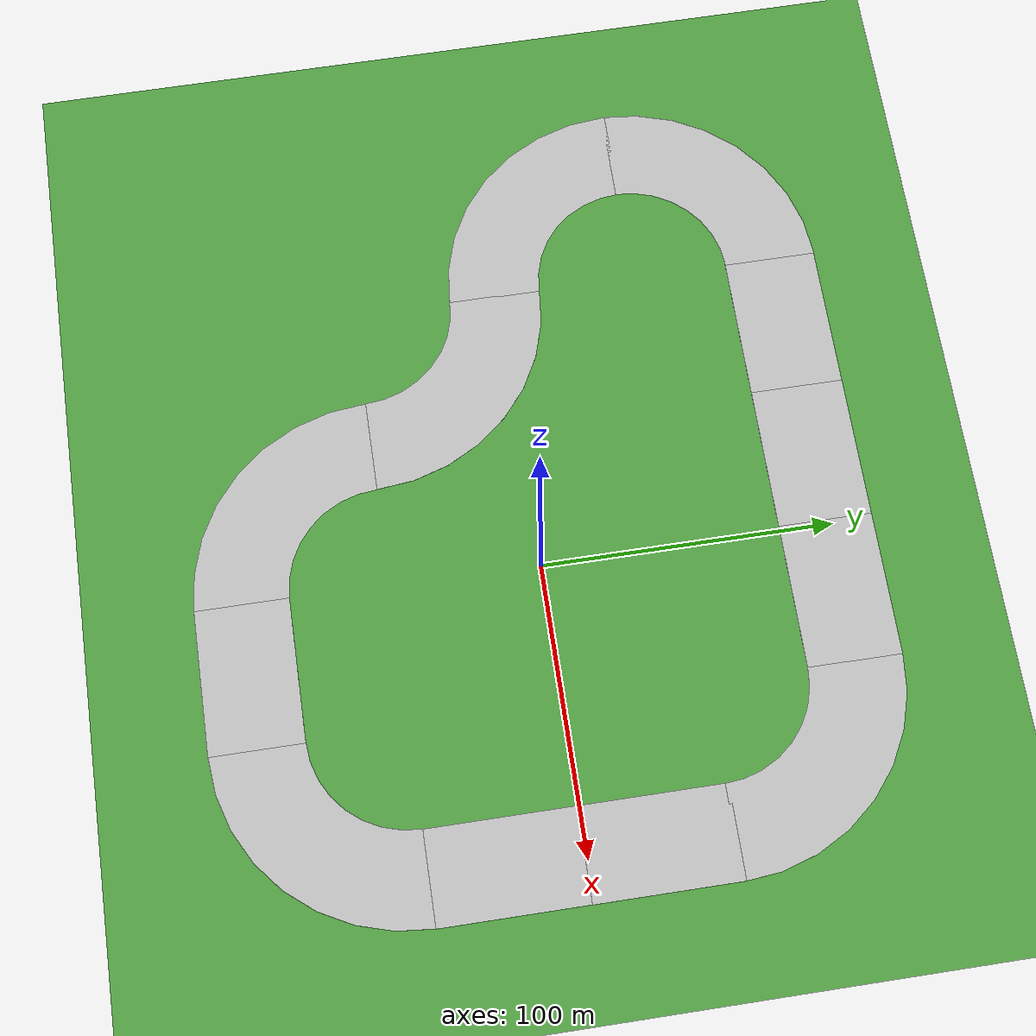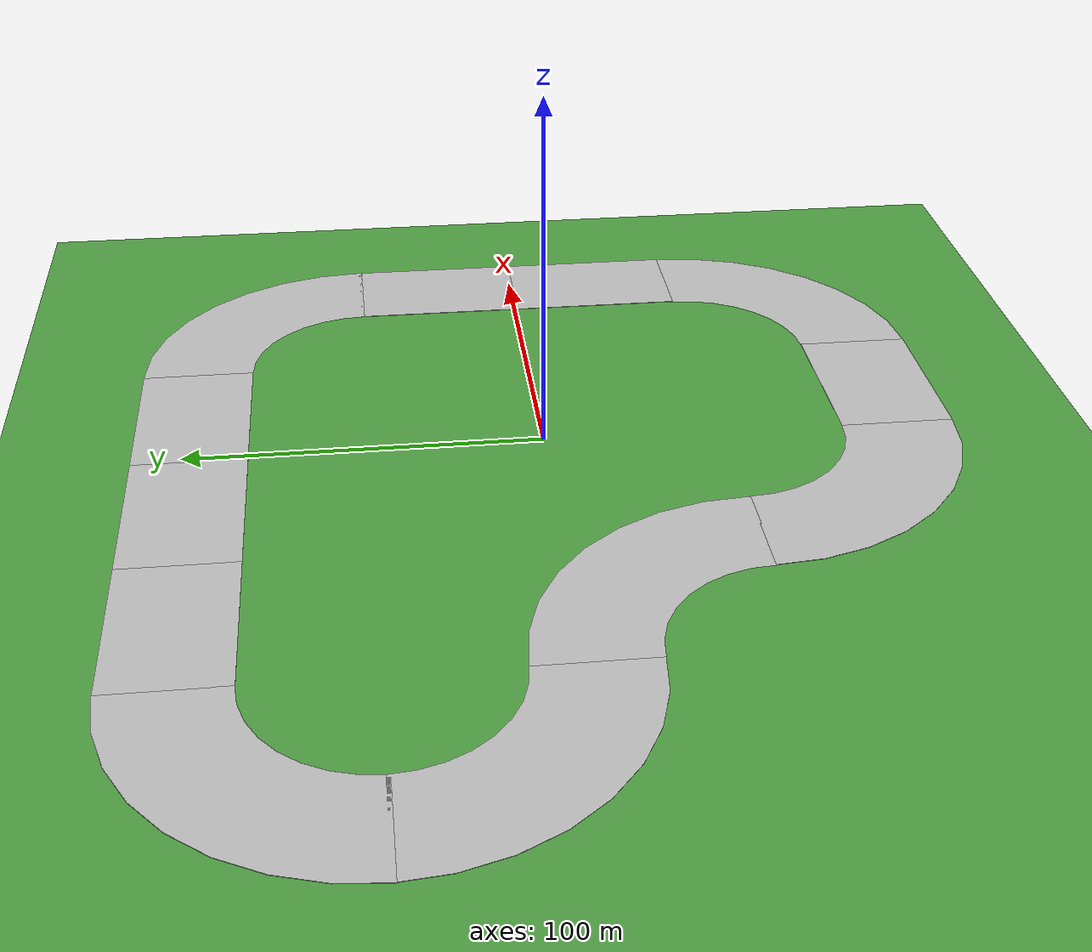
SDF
<sdf version="1.6">
 <world name="default">
  <light name="sun" type="directional">
   <pose>0 0 10 0 -0 0</pose>
   <diffuse>0.8 0.8 0.8 1</diffuse>
   <specular>0.1 0.1 0.1 1</specular>
   <attenuation>
    <range>1000</range>
    <constant>0.9</constant>
    <linear>0.01</linear>
    <quadratic>0.001</quadratic>
   </attenuation>
   <direction>-0.5 0.5 -1</direction>
  </light>
  <gravity>0 0 -9.8</gravity>
  <magnetic_field>6e-06 2.3e-05 -4.2e-05</magnetic_field>
  <atmosphere type="adiabatic"/>
  <physics name="default_physics" default="0" type="ode">
   <max_step_size>0.001</max_step_size>
   <real_time_factor>1</real_time_factor>
   <real_time_update_rate>1000</real_time_update_rate>
  </physics>
  <scene><ambient>0.4 0.4 0.4 1</ambient><background>0.7 0.7 0.7 1</background><shadows>1</shadows></scene>
  <spherical_coordinates>
   <surface_model>EARTH_WGS84</surface_model>
   <latitude_deg>0</latitude_deg>
   <longitude_deg>0</longitude_deg>
   <elevation>0</elevation>
   <heading_deg>0</heading_deg>
  </spherical_coordinates>
  <model name="grass_plane">
   <static>1</static>
   <link name="link">
    <collision name="collision">
     <geometry><plane><normal>0 0 1</normal><size>1000 1000</size></plane></geometry>
     <surface><friction><ode><mu>100</mu><mu2>50</mu2></ode></friction></surface>
    </collision>
    <visual name="visual">
     <cast_shadows>0</cast_shadows>
     <geometry><plane><normal>0 0 1</normal><size>1000 1000</size></plane></geometry>
     <material>
      <script>
       <uri>model://ds_grass_background/materials/scripts</uri>
       <uri>model://ds_grass_background/materials/textures</uri>
       <name>GrassBackground</name>
      </script>
     </material>
    </visual>
   </link>
  </model>
  <model name="curved_6lane_50m">
   <link name="link_0">
    <inertial>
     <mass>1</mass>
     <inertia>
      <ixx>0.166667</ixx>
      <ixy>0</ixy>
      <ixz>0</ixz>
      <iyy>0.166667</iyy>
      <iyz>0</iyz>
      <izz>0.166667</izz>
     </inertia>
    </inertial>
    <visual name="visual">
     <geometry><mesh><uri>model://curved_6lane_50m/curved_6lane_50m.dae</uri><scale>1 1 1</scale></mesh></geometry>
    </visual>
    <collision name="collision">
     <geometry><mesh><uri>model://curved_6lane_50m/curved_6lane_50m.dae</uri><scale>1 1 1</scale></mesh></geometry>
     <surface>
      <friction>
       <ode><mu>1</mu><mu2>1</mu2><fdir1>0 0 0</fdir1><slip1>0</slip1><slip2>0</slip2></ode>
       <torsional>
        <coefficient>1</coefficient>
        <patch_radius>0</patch_radius>
        <surface_radius>0</surface_radius>
        <use_patch_radius>1</use_patch_radius>
        <ode><slip>0</slip></ode>
       </torsional>
      </friction>
      <bounce><restitution_coefficient>0</restitution_coefficient><threshold>1e+06</threshold></bounce>
      <contact>
       <collide_without_contact>0</collide_without_contact>
       <collide_without_contact_bitmask>1</collide_without_contact_bitmask>
       <collide_bitmask>1</collide_bitmask>
       <ode>
        <soft_cfm>0</soft_cfm>
        <soft_erp>0.2</soft_erp>
        <kp>1e+13</kp>
        <kd>1</kd>
        <max_vel>0.01</max_vel>
        <min_depth>0</min_depth>
       </ode>
       <bullet>
        <split_impulse>1</split_impulse>
        <split_impulse_penetration_threshold>-0.01</split_impulse_penetration_threshold>
        <soft_cfm>0</soft_cfm>
        <soft_erp>0.2</soft_erp>
        <kp>1e+13</kp>
        <kd>1</kd>
       </bullet>
      </contact>
     </surface>
    </collision>
   </link>
   <static>1</static>
   <pose>48.1322 47.6005 0 0 -0 0</pose>
  </model>
  <model name="straight_6lane_50m_0">
   <link name="link_0">
    <inertial>
     <mass>1</mass>
     <inertia>
      <ixx>0.166667</ixx>
      <ixy>0</ixy>
      <ixz>0</ixz>
      <iyy>0.166667</iyy>
      <iyz>0</iyz>
      <izz>0.166667</izz>
     </inertia>
    </inertial>
    <visual name="visual">
     <geometry>
      <mesh><uri>model://straight_6lane_50m/straight_6lane_50m.dae</uri><scale>1 1 1</scale></mesh>
     </geometry>
    </visual>
    <collision name="collision">
     <geometry>
      <mesh><uri>model://straight_6lane_50m/straight_6lane_50m.dae</uri><scale>1 1 1</scale></mesh>
     </geometry>
     <surface>
      <friction>
       <ode><mu>1</mu><mu2>1</mu2><fdir1>0 0 0</fdir1><slip1>0</slip1><slip2>0</slip2></ode>
       <torsional>
        <coefficient>1</coefficient>
        <patch_radius>0</patch_radius>
        <surface_radius>0</surface_radius>
        <use_patch_radius>1</use_patch_radius>
        <ode><slip>0</slip></ode>
       </torsional>
      </friction>
      <bounce><restitution_coefficient>0</restitution_coefficient><threshold>1e+06</threshold></bounce>
      <contact>
       <collide_without_contact>0</collide_without_contact>
       <collide_without_contact_bitmask>1</collide_without_contact_bitmask>
       <collide_bitmask>1</collide_bitmask>
       <ode>
        <soft_cfm>0</soft_cfm>
        <soft_erp>0.2</soft_erp>
        <kp>1e+13</kp>
        <kd>1</kd>
        <max_vel>0.01</max_vel>
        <min_depth>0</min_depth>
       </ode>
       <bullet>
        <split_impulse>1</split_impulse>
        <split_impulse_penetration_threshold>-0.01</split_impulse_penetration_threshold>
        <soft_cfm>0</soft_cfm>
        <soft_erp>0.2</soft_erp>
        <kp>1e+13</kp>
        <kd>1</kd>
       </bullet>
      </contact>
     </surface>
    </collision>
   </link>
   <static>1</static>
   <pose>98.0362 23.6968 0 0 -0 0</pose>
  </model>
  <model name="straight_6lane_50m_1">
   <link name="link_0">
    <inertial>
     <mass>1</mass>
     <inertia>
      <ixx>0.166667</ixx>
      <ixy>0</ixy>
      <ixz>0</ixz>
      <iyy>0.166667</iyy>
      <iyz>0</iyz>
      <izz>0.166667</izz>
     </inertia>
    </inertial>
    <visual name="visual">
     <geometry>
      <mesh><uri>model://straight_6lane_50m/straight_6lane_50m.dae</uri><scale>1 1 1</scale></mesh>
     </geometry>
    </visual>
    <collision name="collision">
     <geometry>
      <mesh><uri>model://straight_6lane_50m/straight_6lane_50m.dae</uri><scale>1 1 1</scale></mesh>
     </geometry>
     <surface>
      <friction>
       <ode><mu>1</mu><mu2>1</mu2><fdir1>0 0 0</fdir1><slip1>0</slip1><slip2>0</slip2></ode>
       <torsional>
        <coefficient>1</coefficient>
        <patch_radius>0</patch_radius>
        <surface_radius>0</surface_radius>
        <use_patch_radius>1</use_patch_radius>
        <ode><slip>0</slip></ode>
       </torsional>
      </friction>
      <bounce><restitution_coefficient>0</restitution_coefficient><threshold>1e+06</threshold></bounce>
      <contact>
       <collide_without_contact>0</collide_without_contact>
       <collide_without_contact_bitmask>1</collide_without_contact_bitmask>
       <collide_bitmask>1</collide_bitmask>
       <ode>
        <soft_cfm>0</soft_cfm>
        <soft_erp>0.2</soft_erp>
        <kp>1e+13</kp>
        <kd>1</kd>
        <max_vel>0.01</max_vel>
        <min_depth>0</min_depth>
       </ode>
       <bullet>
        <split_impulse>1</split_impulse>
        <split_impulse_penetration_threshold>-0.01</split_impulse_penetration_threshold>
        <soft_cfm>0</soft_cfm>
        <soft_erp>0.2</soft_erp>
        <kp>1e+13</kp>
        <kd>1</kd>
       </bullet>
      </contact>
     </surface>
    </collision>
   </link>
   <static>1</static>
   <pose>23.237 97.6076 0 0 -0 1.57</pose>
  </model>
  <model name="straight_6lane_50m_1_clone">
   <link name="link_0">
    <inertial>
     <mass>1</mass>
     <inertia>
      <ixx>0.166667</ixx>
      <ixy>0</ixy>
      <ixz>0</ixz>
      <iyy>0.166667</iyy>
      <iyz>0</iyz>
      <izz>0.166667</izz>
     </inertia>
    </inertial>
    <visual name="visual">
     <geometry>
      <mesh><uri>model://straight_6lane_50m/straight_6lane_50m.dae</uri><scale>1 1 1</scale></mesh>
     </geometry>
    </visual>
    <collision name="collision">
     <geometry>
      <mesh><uri>model://straight_6lane_50m/straight_6lane_50m.dae</uri><scale>1 1 1</scale></mesh>
     </geometry>
     <surface>
      <friction>
       <ode><mu>1</mu><mu2>1</mu2><fdir1>0 0 0</fdir1><slip1>0</slip1><slip2>0</slip2></ode>
       <torsional>
        <coefficient>1</coefficient>
        <patch_radius>0</patch_radius>
        <surface_radius>0</surface_radius>
        <use_patch_radius>1</use_patch_radius>
        <ode><slip>0</slip></ode>
       </torsional>
      </friction>
      <bounce><restitution_coefficient>0</restitution_coefficient><threshold>1e+06</threshold></bounce>
      <contact>
       <collide_without_contact>0</collide_without_contact>
       <collide_without_contact_bitmask>1</collide_without_contact_bitmask>
       <collide_bitmask>1</collide_bitmask>
       <ode>
        <soft_cfm>0</soft_cfm>
        <soft_erp>0.2</soft_erp>
        <kp>1e+13</kp>
        <kd>1</kd>
        <max_vel>0.01</max_vel>
        <min_depth>0</min_depth>
       </ode>
       <bullet>
        <split_impulse>1</split_impulse>
        <split_impulse_penetration_threshold>-0.01</split_impulse_penetration_threshold>
        <soft_cfm>0</soft_cfm>
        <soft_erp>0.2</soft_erp>
        <kp>1e+13</kp>
        <kd>1</kd>
       </bullet>
      </contact>
     </surface>
    </collision>
   </link>
   <static>1</static>
   <pose>-26.5632 97.6271 0 0 -0 1.57</pose>
  </model>
  <model name="straight_6lane_50m_1_clone_0">
   <link name="link_0">
    <inertial>
     <mass>1</mass>
     <inertia>
      <ixx>0.166667</ixx>
      <ixy>0</ixy>
      <ixz>0</ixz>
      <iyy>0.166667</iyy>
      <iyz>0</iyz>
      <izz>0.166667</izz>
     </inertia>
    </inertial>
    <visual name="visual">
     <geometry>
      <mesh><uri>model://straight_6lane_50m/straight_6lane_50m.dae</uri><scale>1 1 1</scale></mesh>
     </geometry>
    </visual>
    <collision name="collision">
     <geometry>
      <mesh><uri>model://straight_6lane_50m/straight_6lane_50m.dae</uri><scale>1 1 1</scale></mesh>
     </geometry>
     <surface>
      <friction>
       <ode><mu>1</mu><mu2>1</mu2><fdir1>0 0 0</fdir1><slip1>0</slip1><slip2>0</slip2></ode>
       <torsional>
        <coefficient>1</coefficient>
        <patch_radius>0</patch_radius>
        <surface_radius>0</surface_radius>
        <use_patch_radius>1</use_patch_radius>
        <ode><slip>0</slip></ode>
       </torsional>
      </friction>
      <bounce><restitution_coefficient>0</restitution_coefficient><threshold>1e+06</threshold></bounce>
      <contact>
       <collide_without_contact>0</collide_without_contact>
       <collide_without_contact_bitmask>1</collide_without_contact_bitmask>
       <collide_bitmask>1</collide_bitmask>
       <ode>
        <soft_cfm>0</soft_cfm>
        <soft_erp>0.2</soft_erp>
        <kp>1e+13</kp>
        <kd>1</kd>
        <max_vel>0.01</max_vel>
        <min_depth>0</min_depth>
       </ode>
       <bullet>
        <split_impulse>1</split_impulse>
        <split_impulse_penetration_threshold>-0.01</split_impulse_penetration_threshold>
        <soft_cfm>0</soft_cfm>
        <soft_erp>0.2</soft_erp>
        <kp>1e+13</kp>
        <kd>1</kd>
       </bullet>
      </contact>
     </surface>
    </collision>
   </link>
   <static>1</static>
   <pose>-76.4974 97.6514 0 0 -0 1.57</pose>
  </model>
  <model name="curved_6lane_50m_clone">
   <link name="link_0">
    <inertial>
     <mass>1</mass>
     <inertia>
      <ixx>0.166667</ixx>
      <ixy>0</ixy>
      <ixz>0</ixz>
      <iyy>0.166667</iyy>
      <iyz>0</iyz>
      <izz>0.166667</izz>
     </inertia>
    </inertial>
    <visual name="visual">
     <geometry><mesh><uri>model://curved_6lane_50m/curved_6lane_50m.dae</uri><scale>1 1 1</scale></mesh></geometry>
    </visual>
    <collision name="collision">
     <geometry><mesh><uri>model://curved_6lane_50m/curved_6lane_50m.dae</uri><scale>1 1 1</scale></mesh></geometry>
     <surface>
      <friction>
       <ode><mu>1</mu><mu2>1</mu2><fdir1>0 0 0</fdir1><slip1>0</slip1><slip2>0</slip2></ode>
       <torsional>
        <coefficient>1</coefficient>
        <patch_radius>0</patch_radius>
        <surface_radius>0</surface_radius>
        <use_patch_radius>1</use_patch_radius>
        <ode><slip>0</slip></ode>
       </torsional>
      </friction>
      <bounce><restitution_coefficient>0</restitution_coefficient><threshold>1e+06</threshold></bounce>
      <contact>
       <collide_without_contact>0</collide_without_contact>
       <collide_without_contact_bitmask>1</collide_without_contact_bitmask>
       <collide_bitmask>1</collide_bitmask>
       <ode>
        <soft_cfm>0</soft_cfm>
        <soft_erp>0.2</soft_erp>
        <kp>1e+13</kp>
        <kd>1</kd>
        <max_vel>0.01</max_vel>
        <min_depth>0</min_depth>
       </ode>
       <bullet>
        <split_impulse>1</split_impulse>
        <split_impulse_penetration_threshold>-0.01</split_impulse_penetration_threshold>
        <soft_cfm>0</soft_cfm>
        <soft_erp>0.2</soft_erp>
        <kp>1e+13</kp>
        <kd>1</kd>
       </bullet>
      </contact>
     </surface>
    </collision>
   </link>
   <static>1</static>
   <pose>-101.375 47.786 0 0 -0 1.57</pose>
  </model>
  <model name="curved_6lane_50m_clone_clone">
   <link name="link_0">
    <inertial>
     <mass>1</mass>
     <inertia>
      <ixx>0.166667</ixx>
      <ixy>0</ixy>
      <ixz>0</ixz>
      <iyy>0.166667</iyy>
      <iyz>0</iyz>
      <izz>0.166667</izz>
     </inertia>
    </inertial>
    <visual name="visual">
     <geometry><mesh><uri>model://curved_6lane_50m/curved_6lane_50m.dae</uri><scale>1 1 1</scale></mesh></geometry>
    </visual>
    <collision name="collision">
     <geometry><mesh><uri>model://curved_6lane_50m/curved_6lane_50m.dae</uri><scale>1 1 1</scale></mesh></geometry>
     <surface>
      <friction>
       <ode><mu>1</mu><mu2>1</mu2><fdir1>0 0 0</fdir1><slip1>0</slip1><slip2>0</slip2></ode>
       <torsional>
        <coefficient>1</coefficient>
        <patch_radius>0</patch_radius>
        <surface_radius>0</surface_radius>
        <use_patch_radius>1</use_patch_radius>
        <ode><slip>0</slip></ode>
       </torsional>
      </friction>
      <bounce><restitution_coefficient>0</restitution_coefficient><threshold>1e+06</threshold></bounce>
      <contact>
       <collide_without_contact>0</collide_without_contact>
       <collide_without_contact_bitmask>1</collide_without_contact_bitmask>
       <collide_bitmask>1</collide_bitmask>
       <ode>
        <soft_cfm>0</soft_cfm>
        <soft_erp>0.2</soft_erp>
        <kp>1e+13</kp>
        <kd>1</kd>
        <max_vel>0.01</max_vel>
        <min_depth>0</min_depth>
       </ode>
       <bullet>
        <split_impulse>1</split_impulse>
        <split_impulse_penetration_threshold>-0.01</split_impulse_penetration_threshold>
        <soft_cfm>0</soft_cfm>
        <soft_erp>0.2</soft_erp>
        <kp>1e+13</kp>
        <kd>1</kd>
       </bullet>
      </contact>
     </surface>
    </collision>
   </link>
   <static>1</static>
   <pose>-101.293 48.8426 0 0 -0 3.14159</pose>
  </model>
  <model name="curved_6lane_50m_clone_clone_clone">
   <link name="link_0">
    <inertial>
     <mass>1</mass>
     <inertia>
      <ixx>0.166667</ixx>
      <ixy>0</ixy>
      <ixz>0</ixz>
      <iyy>0.166667</iyy>
      <iyz>0</iyz>
      <izz>0.166667</izz>
     </inertia>
    </inertial>
    <visual name="visual">
     <geometry><mesh><uri>model://curved_6lane_50m/curved_6lane_50m.dae</uri><scale>1 1 1</scale></mesh></geometry>
    </visual>
    <collision name="collision">
     <geometry><mesh><uri>model://curved_6lane_50m/curved_6lane_50m.dae</uri><scale>1 1 1</scale></mesh></geometry>
     <surface>
      <friction>
       <ode><mu>1</mu><mu2>1</mu2><fdir1>0 0 0</fdir1><slip1>0</slip1><slip2>0</slip2></ode>
       <torsional>
        <coefficient>1</coefficient>
        <patch_radius>0</patch_radius>
        <surface_radius>0</surface_radius>
        <use_patch_radius>1</use_patch_radius>
        <ode><slip>0</slip></ode>
       </torsional>
      </friction>
      <bounce><restitution_coefficient>0</restitution_coefficient><threshold>1e+06</threshold></bounce>
      <contact>
       <collide_without_contact>0</collide_without_contact>
       <collide_without_contact_bitmask>1</collide_without_contact_bitmask>
       <collide_bitmask>1</collide_bitmask>
       <ode>
        <soft_cfm>0</soft_cfm>
        <soft_erp>0.2</soft_erp>
        <kp>1e+13</kp>
        <kd>1</kd>
        <max_vel>0.01</max_vel>
        <min_depth>0</min_depth>
       </ode>
       <bullet>
        <split_impulse>1</split_impulse>
        <split_impulse_penetration_threshold>-0.01</split_impulse_penetration_threshold>
        <soft_cfm>0</soft_cfm>
        <soft_erp>0.2</soft_erp>
        <kp>1e+13</kp>
        <kd>1</kd>
       </bullet>
      </contact>
     </surface>
    </collision>
   </link>
   <static>1</static>
   <pose>-101.668 -51.1969 0 0 -0 0</pose>
  </model>
  <model name="curved_6lane_50m_clone_clone_clone_0">
   <link name="link_0">
    <inertial>
     <mass>1</mass>
     <inertia>
      <ixx>0.166667</ixx>
      <ixy>0</ixy>
      <ixz>0</ixz>
      <iyy>0.166667</iyy>
      <iyz>0</iyz>
      <izz>0.166667</izz>
     </inertia>
    </inertial>
    <visual name="visual">
     <geometry><mesh><uri>model://curved_6lane_50m/curved_6lane_50m.dae</uri><scale>1 1 1</scale></mesh></geometry>
    </visual>
    <collision name="collision">
     <geometry><mesh><uri>model://curved_6lane_50m/curved_6lane_50m.dae</uri><scale>1 1 1</scale></mesh></geometry>
     <surface>
      <friction>
       <ode><mu>1</mu><mu2>1</mu2><fdir1>0 0 0</fdir1><slip1>0</slip1><slip2>0</slip2></ode>
       <torsional>
        <coefficient>1</coefficient>
        <patch_radius>0</patch_radius>
        <surface_radius>0</surface_radius>
        <use_patch_radius>1</use_patch_radius>
        <ode><slip>0</slip></ode>
       </torsional>
      </friction>
      <bounce><restitution_coefficient>0</restitution_coefficient><threshold>1e+06</threshold></bounce>
      <contact>
       <collide_without_contact>0</collide_without_contact>
       <collide_without_contact_bitmask>1</collide_without_contact_bitmask>
       <collide_bitmask>1</collide_bitmask>
       <ode>
        <soft_cfm>0</soft_cfm>
        <soft_erp>0.2</soft_erp>
        <kp>1e+13</kp>
        <kd>1</kd>
        <max_vel>0.01</max_vel>
        <min_depth>0</min_depth>
       </ode>
       <bullet>
        <split_impulse>1</split_impulse>
        <split_impulse_penetration_threshold>-0.01</split_impulse_penetration_threshold>
        <soft_cfm>0</soft_cfm>
        <soft_erp>0.2</soft_erp>
        <kp>1e+13</kp>
        <kd>1</kd>
       </bullet>
      </contact>
     </surface>
    </collision>
   </link>
   <static>1</static>
   <pose>-1.63234 -50.8206 0 0 -0 3.14159</pose>
  </model>
  <model name="straight_6lane_50m_1_clone_0_clone">
   <link name="link_0">
    <inertial>
     <mass>1</mass>
     <inertia>
      <ixx>0.166667</ixx>
      <ixy>0</ixy>
      <ixz>0</ixz>
      <iyy>0.166667</iyy>
      <iyz>0</iyz>
      <izz>0.166667</izz>
     </inertia>
    </inertial>
    <visual name="visual">
     <geometry>
      <mesh><uri>model://straight_6lane_50m/straight_6lane_50m.dae</uri><scale>1 1 1</scale></mesh>
     </geometry>
    </visual>
    <collision name="collision">
     <geometry>
      <mesh><uri>model://straight_6lane_50m/straight_6lane_50m.dae</uri><scale>1 1 1</scale></mesh>
     </geometry>
     <surface>
      <friction>
       <ode><mu>1</mu><mu2>1</mu2><fdir1>0 0 0</fdir1><slip1>0</slip1><slip2>0</slip2></ode>
       <torsional>
        <coefficient>1</coefficient>
        <patch_radius>0</patch_radius>
        <surface_radius>0</surface_radius>
        <use_patch_radius>1</use_patch_radius>
        <ode><slip>0</slip></ode>
       </torsional>
      </friction>
      <bounce><restitution_coefficient>0</restitution_coefficient><threshold>1e+06</threshold></bounce>
      <contact>
       <collide_without_contact>0</collide_without_contact>
       <collide_without_contact_bitmask>1</collide_without_contact_bitmask>
       <collide_bitmask>1</collide_bitmask>
       <ode>
        <soft_cfm>0</soft_cfm>
        <soft_erp>0.2</soft_erp>
        <kp>1e+13</kp>
        <kd>1</kd>
        <max_vel>0.01</max_vel>
        <min_depth>0</min_depth>
       </ode>
       <bullet>
        <split_impulse>1</split_impulse>
        <split_impulse_penetration_threshold>-0.01</split_impulse_penetration_threshold>
        <soft_cfm>0</soft_cfm>
        <soft_erp>0.2</soft_erp>
        <kp>1e+13</kp>
        <kd>1</kd>
       </bullet>
      </contact>
     </surface>
    </collision>
   </link>
   <static>1</static>
   <pose>23.2404 -100.868 0 0 -0 1.57</pose>
  </model>
  <model name="curved_6lane_50m_clone_clone_clone_0_clone">
   <link name="link_0">
    <inertial>
     <mass>1</mass>
     <inertia>
      <ixx>0.166667</ixx>
      <ixy>0</ixy>
      <ixz>0</ixz>
      <iyy>0.166667</iyy>
      <iyz>0</iyz>
      <izz>0.166667</izz>
     </inertia>
    </inertial>
    <visual name="visual">
     <geometry><mesh><uri>model://curved_6lane_50m/curved_6lane_50m.dae</uri><scale>1 1 1</scale></mesh></geometry>
    </visual>
    <collision name="collision">
     <geometry><mesh><uri>model://curved_6lane_50m/curved_6lane_50m.dae</uri><scale>1 1 1</scale></mesh></geometry>
     <surface>
      <friction>
       <ode><mu>1</mu><mu2>1</mu2><fdir1>0 0 0</fdir1><slip1>0</slip1><slip2>0</slip2></ode>
       <torsional>
        <coefficient>1</coefficient>
        <patch_radius>0</patch_radius>
        <surface_radius>0</surface_radius>
        <use_patch_radius>1</use_patch_radius>
        <ode><slip>0</slip></ode>
       </torsional>
      </friction>
      <bounce><restitution_coefficient>0</restitution_coefficient><threshold>1e+06</threshold></bounce>
      <contact>
       <collide_without_contact>0</collide_without_contact>
       <collide_without_contact_bitmask>1</collide_without_contact_bitmask>
       <collide_bitmask>1</collide_bitmask>
       <ode>
        <soft_cfm>0</soft_cfm>
        <soft_erp>0.2</soft_erp>
        <kp>1e+13</kp>
        <kd>1</kd>
        <max_vel>0.01</max_vel>
        <min_depth>0</min_depth>
       </ode>
       <bullet>
        <split_impulse>1</split_impulse>
        <split_impulse_penetration_threshold>-0.01</split_impulse_penetration_threshold>
        <soft_cfm>0</soft_cfm>
        <soft_erp>0.2</soft_erp>
        <kp>1e+13</kp>
        <kd>1</kd>
       </bullet>
      </contact>
     </surface>
    </collision>
   </link>
   <static>1</static>
   <pose>47.9226 -50.8672 0 0 0 -1.57</pose>
  </model>
  <model name="straight_6lane_50m_0_clone">
   <link name="link_0">
    <inertial>
     <mass>1</mass>
     <inertia>
      <ixx>0.166667</ixx>
      <ixy>0</ixy>
      <ixz>0</ixz>
      <iyy>0.166667</iyy>
      <iyz>0</iyz>
      <izz>0.166667</izz>
     </inertia>
    </inertial>
    <visual name="visual">
     <geometry>
      <mesh><uri>model://straight_6lane_50m/straight_6lane_50m.dae</uri><scale>1 1 1</scale></mesh>
     </geometry>
    </visual>
    <collision name="collision">
     <geometry>
      <mesh><uri>model://straight_6lane_50m/straight_6lane_50m.dae</uri><scale>1 1 1</scale></mesh>
     </geometry>
     <surface>
      <friction>
       <ode><mu>1</mu><mu2>1</mu2><fdir1>0 0 0</fdir1><slip1>0</slip1><slip2>0</slip2></ode>
       <torsional>
        <coefficient>1</coefficient>
        <patch_radius>0</patch_radius>
        <surface_radius>0</surface_radius>
        <use_patch_radius>1</use_patch_radius>
        <ode><slip>0</slip></ode>
       </torsional>
      </friction>
      <bounce><restitution_coefficient>0</restitution_coefficient><threshold>1e+06</threshold></bounce>
      <contact>
       <collide_without_contact>0</collide_without_contact>
       <collide_without_contact_bitmask>1</collide_without_contact_bitmask>
       <collide_bitmask>1</collide_bitmask>
       <ode>
        <soft_cfm>0</soft_cfm>
        <soft_erp>0.2</soft_erp>
        <kp>1e+13</kp>
        <kd>1</kd>
        <max_vel>0.01</max_vel>
        <min_depth>0</min_depth>
       </ode>
       <bullet>
        <split_impulse>1</split_impulse>
        <split_impulse_penetration_threshold>-0.01</split_impulse_penetration_threshold>
        <soft_cfm>0</soft_cfm>
        <soft_erp>0.2</soft_erp>
        <kp>1e+13</kp>
        <kd>1</kd>
       </bullet>
      </contact>
     </surface>
    </collision>
   </link>
   <static>1</static>
   <pose>97.9881 -25.9734 0 0 -0 0</pose>
  </model>
 </world>
</sdf>
